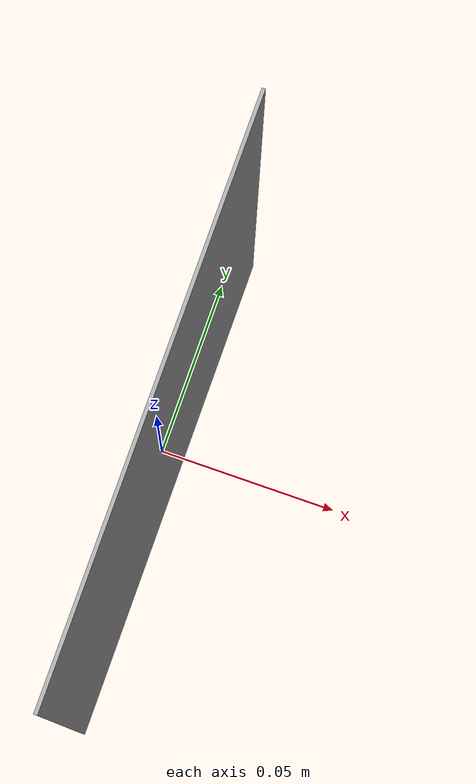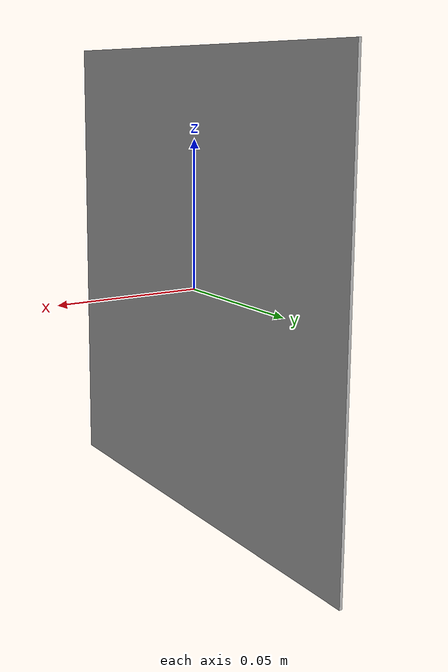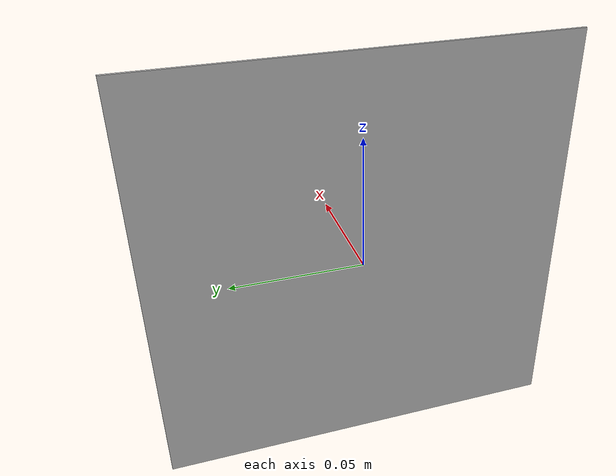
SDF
<?xml version="1.0"?>
<sdf version="1.6">
  <model name="apriltag_2">
    <static>true</static>
    <link name="tag_link">
      <visual name="visual">
        <geometry>
          <box><size>0.001 0.16 0.16</size></box>
        </geometry>
        <material>
          <script>
            <uri>model://apriltag_2/materials/scripts</uri>
            <uri>model://apriltag_2/materials/textures</uri>
            <name>AprilTag2</name>
          </script>
        </material>
      </visual>
      <collision name="collision">
        <geometry>
          <box><size>0.001 0.16 0.16</size></box>
        </geometry>
      </collision>
    </link>
  </model>
</sdf>
